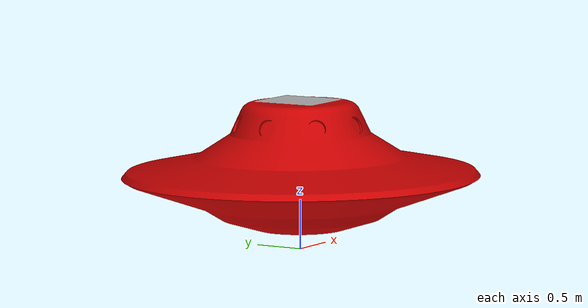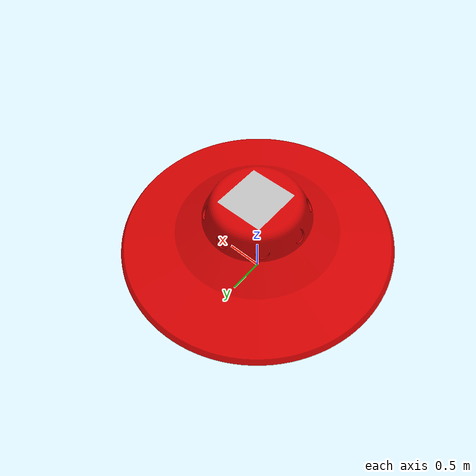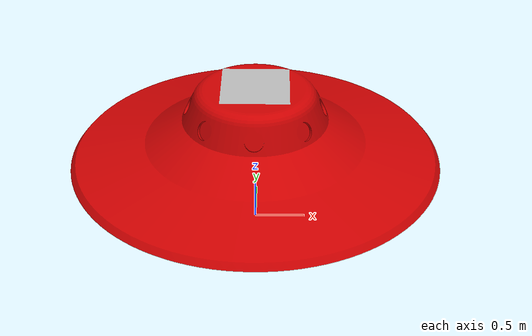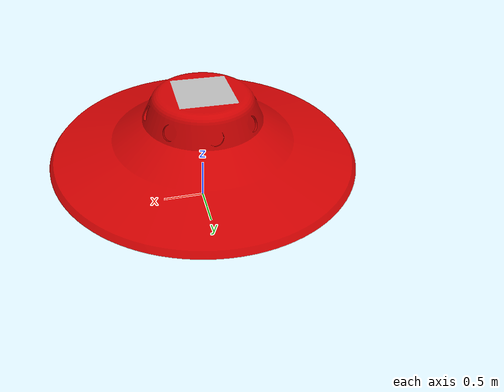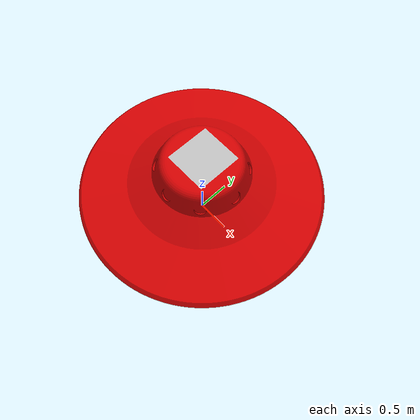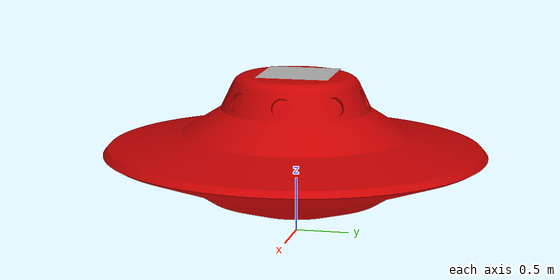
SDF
<?xml version="1.0" ?>
<sdf version="1.6">
  <model name="e_camera">
    <link name="camera_1_link">
      <gravity>false</gravity>
      <inertial>
        <mass>0.1</mass>
        <inertia>
          <ixx>0.000166667</ixx>
          <iyy>0.000166667</iyy>
          <izz>0.000166667</izz>
        </inertia>
      </inertial>

      <collision name="collision">
        <pose>0 0 0 0 0 0</pose>
        <geometry>
          <mesh>
            <uri>model://e_camera/meshes/camera.dae</uri>
            <scale>0.03 0.03 0.03</scale>
          </mesh>
        </geometry>
      </collision>

      <visual name="visual">
        <pose>0 0 0 0 0 0</pose>
        <geometry>
          <mesh>
            <uri>model://e_camera/meshes/camera.dae</uri>
            <scale>0.03 0.03 0.03</scale>
          </mesh>
        </geometry>
      </visual>

      <sensor name='camera' type='camera'>
        <pose>0 0 0 1.57 1.57 1.57</pose>
        <visualize>true</visualize>
        <update_rate>10</update_rate>
        <camera name='camera_1'>
            <horizontal_fov>1.2</horizontal_fov>
            <aspect_ratio>2.0</aspect_ratio>

            <image>
                <width>500</width>
							  <height>500</height>
                <format>R8G8B8</format>
            </image>
            <clip>
                <near>0.2</near>
                <far>800</far>
            </clip>
        </camera>
        <plugin name='camera_control' filename='libgazebo_ros_camera.so'>
						<alwaysOn>true</alwaysOn>
						<updateRate>30</updateRate>
						<cameraName>gazebo/overhead_cam</cameraName>
						<imageTopicName>image_rect_color</imageTopicName>
						<cameraInfoTopicName>camera_info</cameraInfoTopicName>
						<frameName>overhead_cam_frame</frameName>
				</plugin>
        <always_on>1</always_on>
				<update_rate>30</update_rate>

      </sensor>

    </link>

  </model>

</sdf>
